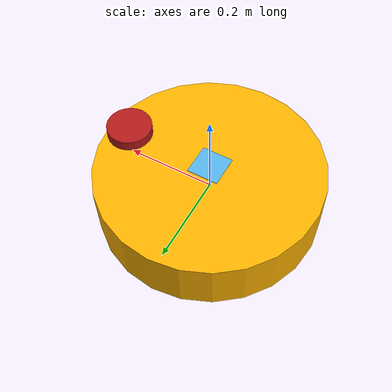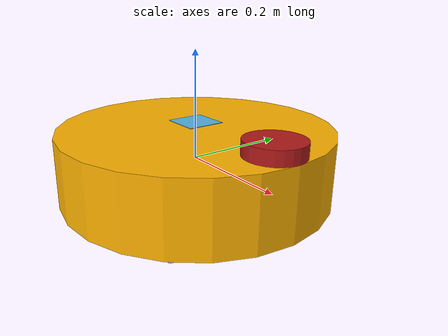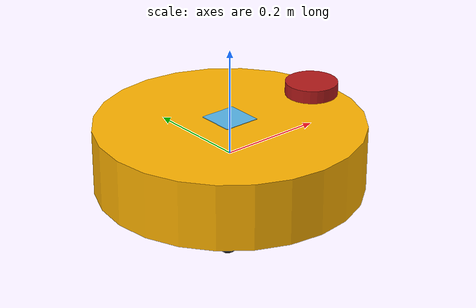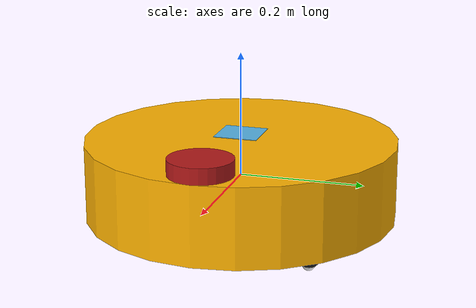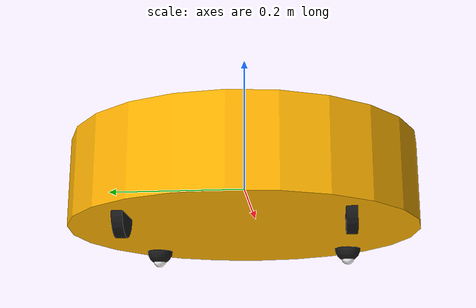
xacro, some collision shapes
<?xml version="1.0"?>

<robot name="robot" xmlns:xacro="http://www.ros.org/wiki/xacro">

    <xacro:include filename="$(find robot_description)/urdf/robot_2.gazebo" />
    <xacro:include filename="$(find robot_description)/urdf/marker_2.xacro" />

    <!-- Link - base_link -->
    <link name="base_link"></link>

    <!-- place marker on robot-->
    <xacro:marker prefix="marker13" parent="link_chassis">
        <origin xyz="0 0 0.07" rpy= "0 0 0"/>
    </xacro:marker>

<!-- Joint - base_link/chassis -->
    <joint name="joint_base_link_chassis" type="fixed">
        <origin rpy="0 0 0" xyz="0 0 0" />
        <child link="link_chassis" />
        <parent link="base_link" />
        <joint_properties damping="1.0" friction="1.0" />
    </joint>

    <!-- Link - chassis -->
    <link name="link_chassis">
        <inertial>
            <mass value="10" />
            <origin xyz="0 0 0.0625" rpy="0 0 0" />
            <inertia ixx="0.2604" ixy="0" ixz="0" iyy="0.2604" iyz="0" izz="0.3125" />
        </inertial>

        <collision>
            <geometry>
                <cylinder length="0.125" radius="0.25" />
            </geometry>
        </collision>

        <visual>
            <geometry>
                <cylinder length="0.125" radius="0.25" />
            </geometry>
            <material name="GoldenYellow">
                <color rgba="1.0 0.7 0.0 1.0" />
            </material>
        </visual>
    </link>

    <!-- Joint - chassis/left_caster_wheel -->
    <joint name="joint_chassis_left_caster_wheel" type="fixed">
        <origin rpy="0 0 0" xyz="0.15 0.15 -0.0625" />
        <child link="link_left_caster_wheel" />
        <parent link="link_chassis" />
        <joint_properties damping="1.0" friction="1.0" />
    </joint>

    <!-- Link - left_caster_wheel -->
    <link name="link_left_caster_wheel">
        <inertial>
            <mass value="0.5" />
            <origin xyz="0 0 0" rpy="0 0 0" />
            <inertia ixx="0.00008" ixy="0" ixz="0" iyy="0.00008" iyz="0" izz="0.00008"/>
        </inertial>

        <!-- caster wheel support -->
        <collision>
            <origin rpy="0 0 0" xyz="0 0 0" />
            <geometry>
                <sphere radius="0.02" />
            </geometry>
        </collision>
        <visual>
            <origin rpy="0 0 0" xyz="0 0 0" />
            <geometry>
                <sphere radius="0.02" />
            </geometry>
            <material name="Black">
                <color rgba="0.1 0.1 0.1 1.0" />
            </material>
        </visual>

        <!-- caster wheel -->
        <collision>
            <origin rpy="0 0 0" xyz="0 0 -0.015" />
            <geometry>
                <sphere radius="0.01" />
            </geometry>
        </collision>
        <visual>
            <origin rpy="0 0 0" xyz="0 0 -0.015" />
            <geometry>
                <sphere radius="0.01" />
            </geometry>
            <material name="White">
                <color rgba="1.0 1.0 1.0 1.0" />
            </material>
        </visual>
    </link>

    <!-- Joint - chassis/right_caster_wheel -->
    <joint name="joint_chassis_right_caster_wheel" type="fixed">
        <origin rpy="0 0 0" xyz="0.15 -0.15 -0.0625" />
        <child link="link_right_caster_wheel" />
        <parent link="link_chassis" />
        <joint_properties damping="1.0" friction="1.0" />
    </joint>

    <!-- Link - right_caster_wheel -->
    <link name="link_right_caster_wheel">
        <inertial>
            <mass value="0.5" />
            <origin xyz="0 0 0" rpy="0 0 0" />
            <inertia ixx="0.00008" ixy="0" ixz="0" iyy="0.00008" iyz="0" izz="0.00008"/>
        </inertial>

        <!-- caster wheel support -->
        <collision>
            <origin rpy="0 0 0" xyz="0 0 0" />
            <geometry>
                <sphere radius="0.02" />
            </geometry>
        </collision>
        <visual>
            <origin rpy="0 0 0" xyz="0 0 0" />
            <geometry>
                <sphere radius="0.02" />
            </geometry>
            <material name="Black">
                <color rgba="0.1 0.1 0.1 1.0" />
            </material>
        </visual>

        <!-- caster wheel -->
        <collision>
            <origin rpy="0 0 0" xyz="0 0 -0.015" />
            <geometry>
                <sphere radius="0.01" />
            </geometry>
        </collision>
        <visual>
            <origin rpy="0 0 0" xyz="0 0 -0.015" />
            <geometry>
                <sphere radius="0.01" />
            </geometry>
            <material name="White">
                <color rgba="1.0 1.0 1.0 1.0" />
            </material>
        </visual>
    </link>

    <!-- Joint - chassis/left_wheel -->
    <joint name="joint_chassis_left_wheel" type="continuous">
        <origin rpy="0 0 0" xyz="-0.125 0.15 -0.0625" />
        <child link="link_left_wheel" />
        <parent link="link_chassis" />
        <axis rpy="0 0 0" xyz="0 1 0" />
        <limit effort="10000" velocity="1000" />
        <joint_properties damping="1.0" friction="1.0" />
    </joint>

    <!-- Link - left_wheel -->
    <link name="link_left_wheel">
        <inertial>
            <mass value="1" />
            <origin xyz="0 0 0" rpy="0 0 0" />
            <inertia ixx="0.001475" ixy="0" ixz="0" iyy="0.001475" iyz="0" izz="0.00045"/>
        </inertial>

        <!-- tires -->
        <collision>
            <origin rpy="1.57079 0 0" xyz="0 0 0" />
            <geometry>
                <cylinder length="0.015" radius="0.03"/>
            </geometry>
        </collision>
        <visual>
            <origin rpy="1.57079 0 0" xyz="0 0 0" />
            <geometry>
                <cylinder length="0.015" radius="0.03"/>
            </geometry>
            <material name="Black">
                <color rgba="0.1 0.1 0.1 1.0" />
            </material>
        </visual>
    </link>

    <!-- Joint - chassis/right_wheel -->
    <joint name="joint_chassis_right_wheel" type="continuous">
        <origin rpy="0 0 0" xyz="-0.125 -0.15 -0.0625" />
        <child link="link_right_wheel" />
        <parent link="link_chassis" />
        <axis rpy="0 0 0" xyz="0 1 0" />
        <limit effort="10000" velocity="1000" />
        <joint_properties damping="1.0" friction="1.0" />
    </joint>

    <!-- Link - right_wheel -->
    <link name="link_right_wheel">
        <inertial>
            <mass value="1" />
            <origin xyz="0 0 0" rpy="0 0 0" />
            <inertia ixx="0.001475" ixy="0" ixz="0" iyy="0.001475" iyz="0" izz="0.00045"/>
        </inertial>

        <!-- tires -->
        <collision>
            <origin rpy="1.57079 0 0" xyz="0 0 0" />
            <geometry>
                <cylinder length="0.015" radius="0.03"/>
            </geometry>
        </collision>
        <visual>
            <origin rpy="1.57079 0 0" xyz="0 0 0" />
            <geometry>
                <cylinder length="0.015" radius="0.03"/>
            </geometry>
            <material name="Black">
                <color rgba="0.1 0.1 0.1 1.0" />
            </material>
        </visual>
    </link>

    <!-- Joint - chassis/laser_scan -->
    <joint name="joint_chassis_laser_scan" type="fixed">
        <origin rpy="0 0 0" xyz="0.2 0 0.075" />
        <child link="link_laser_scan" />
        <parent link="link_chassis" />
        <joint_properties damping="1.0" friction="1.0" />
    </joint>

    <!-- Link - laser_scan -->
    <link name="link_laser_scan">
        <inertial>
            <origin xyz="0 0 0" rpy="0 0 0" />
            <mass value="0.5" />
            <inertia ixx="0.00135416666666667" ixy="0" ixz="0" iyy="0.00135416666666667" iyz="0" izz="0.000625"/>
        </inertial>
        <visual>
            <origin xyz="0 0 0" rpy="0 0 0" />
            <geometry>
                <cylinder radius="0.05" length="0.025"/>
            </geometry>
            <material name="Red">
                <color rgba="0.7 0.1 0.1 1" />
            </material>
        </visual>
        <collision>
            <origin xyz="0 0 0" rpy="0 0 0"/>
            <geometry>
                <cylinder radius="0.05" length="0.025"/>
            </geometry>
        </collision>
    </link>

</robot>

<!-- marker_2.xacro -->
<robot xmlns:xacro="http://www.ros.org/wiki/xacro">

  <xacro:property name="marker_size" value="0.07"/>

  <xacro:macro name="marker" params="prefix parent *origin">
    <!-- ArUco marker link -->
    <link name="${prefix}_link">
      <visual>
        <origin xyz="0 0 0" rpy="0 1.57 0"/>
        <xacro:insert_block name="origin"/>
        <geometry>
          <mesh filename="model://marker13/meshes/Marker13.dae" scale ="0.2 0.2 0.2"/>
        </geometry>
      </visual>
      <collision>
        <geometry>
          <box size="${marker_size} ${marker_size} 0.001"/>
        </geometry>
      </collision>
      <inertial>
        <mass value="0.01"/>
        <inertia ixx="0.0001" ixy="0.0" ixz="0.0"
                 iyy="0.0001" iyz="0.0"
                 izz="0.0001"/>
      </inertial>
      </link>

    <!-- Joint to attach marker -->
    <joint name="${prefix}_joint" type="fixed">
      <parent link="${parent}"/>
      <child link="${prefix}_link"/>
      <xacro:insert_block name="origin"/>
    </joint>
  </xacro:macro>
</robot>
